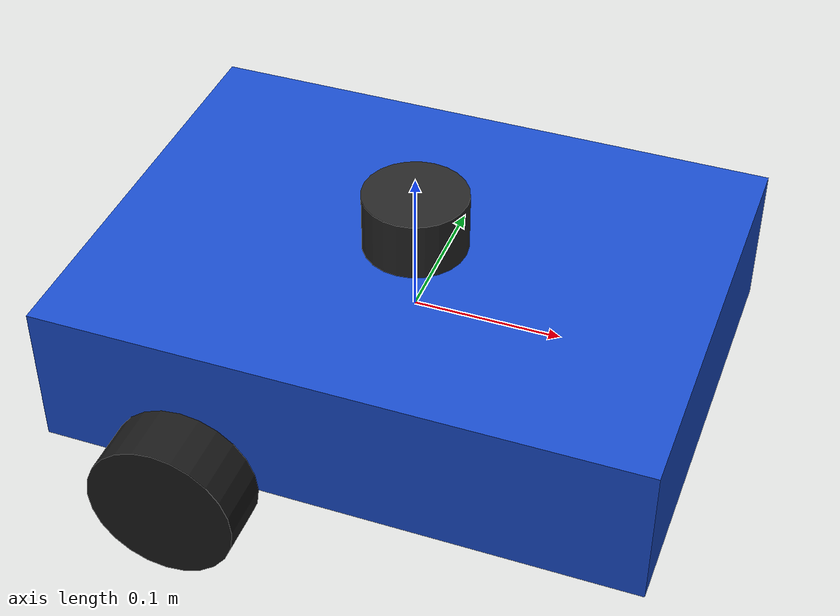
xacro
<?xml version="1.0"?>

<robot xmlns:xacro="http://www.ros.org/wiki/xacro"
       name="robot_diferencial">

<!-- Parametros iniciales: dimencion, ubicacion, variables (pi, densidad, masa) -->

  <!-- Dimensiones del chasis en metros -->
  <xacro:property name="chassis_length" value="0.40"/>
  <xacro:property name="chassis_width" value="0.30"/>
  <xacro:property name="chassis_height" value="0.10"/>

  <!-- Dimensiones de las ruedas en metros -->
  <xacro:property name="wheel_radius" value="0.05"/>
  <xacro:property name="wheel_width" value="0.04"/>
  <xacro:property name="wheel_x_offset" value="-0.10"/>
  <xacro:property name="wheel_y_offset" value="0.17"/>

  <!-- Dimensiones y posicion del caster delantero -->
  <xacro:property name="caster_radius" value="${wheel_radius}"/>
  <xacro:property name="caster_x_offset" value="0.10"/>
  <xacro:property name="caster_z_offset" value="${-caster_radius}"/>

  <!-- Constante pi -->
  <xacro:property name="pi_const" value="3.14159265"/>

  <!-- Masas en kg (realistas, evitan relacion de masas extrema que
       desestabiliza el solver ODE y hace que el robot "se mueva solo") -->
  <xacro:property name="chassis_mass" value="5.0"/>
  <xacro:property name="wheel_mass" value="0.5"/>
  <xacro:property name="caster_mass" value="0.2"/>

<!--       Propiedades del cuerpo principal del robot (base_link)     -->

  <!-- Cuerpo principal del robot -->
  <link name="base_link">

    <visual>
      <origin xyz="0 0 0" rpy="0 0 0"/>

      <geometry>
        <box size="${chassis_length} ${chassis_width} ${chassis_height}"/>
      </geometry>

      <material name="blue">
        <color rgba="0.1 0.3 0.8 1.0"/>
      </material>
    </visual>

    <!-- Geometria de colision del chasis -->
    <collision>
      <origin xyz="0 0 0" rpy="0 0 0"/>

      <geometry>
        <box size="${chassis_length} ${chassis_width} ${chassis_height}"/>
      </geometry>
    </collision>

    <!-- Propiedades de inercia del chasis -->
    <inertial>
      <origin xyz="0 0 0" rpy="0 0 0"/>

      <mass value="${chassis_mass}"/>

      <inertia
        ixx="${chassis_mass * (chassis_width**2 + chassis_height**2) / 12.0}"
        ixy="0.0"
        ixz="0.0"
        iyy="${chassis_mass * (chassis_length**2 + chassis_height**2) / 12.0}"
        iyz="0.0"
        izz="${chassis_mass * (chassis_length**2 + chassis_width**2) / 12.0}"/>
    </inertial>

  </link>

<!--                    Propiedades rueda izquierda                   -->

  <!-- Rueda izquierda -->
  <link name="left_wheel_link">

    <visual>
      <origin xyz="0 0 0" rpy="1.5708 0 0"/>

      <geometry>
        <cylinder radius="${wheel_radius}"
                  length="${wheel_width}"/>
      </geometry>

      <material name="wheel_black">
        <color rgba="0.1 0.1 0.1 1.0"/>
      </material>
    </visual>

    <!-- Geometria de colision de la rueda izquierda -->
    <collision>
      <origin xyz="0 0 0" rpy="1.5708 0 0"/>
      <geometry>
        <cylinder radius="${wheel_radius}"
                  length="${wheel_width}"/>
      </geometry>
    </collision>

    <!-- Propiedades de inercia de la rueda izquierda -->
    <inertial>
      <origin xyz="0 0 0" rpy="0 0 0"/>

      <mass value="${wheel_mass}"/>

      <inertia
        ixx="${wheel_mass * (3*wheel_radius**2 + wheel_width**2) / 12.0}"
        ixy="0.0"
        ixz="0.0"
        iyy="${wheel_mass * wheel_radius**2 / 2.0}"
        iyz="0.0"
        izz="${wheel_mass * (3*wheel_radius**2 + wheel_width**2) / 12.0}"/>
    </inertial>

  </link>

  <!-- Articulacion de la rueda izquierda -->
  <joint name="left_wheel_joint" type="continuous">

    <parent link="base_link"/>
    <child link="left_wheel_link"/>

    <origin xyz="${wheel_x_offset} ${wheel_y_offset} ${-wheel_radius}"
            rpy="0 0 0"/>

    <axis xyz="0 1 0"/>
    <dynamics damping="0.05" friction="0.05"/>

  </joint>

<!--                     Propieades rueda derecha                     -->

  <!-- Rueda derecha -->
  <link name="right_wheel_link">

    <visual>
      <origin xyz="0 0 0" rpy="1.5708 0 0"/>

      <geometry>
        <cylinder radius="${wheel_radius}"
                  length="${wheel_width}"/>
      </geometry>

      <material name="wheel_black_right">
        <color rgba="0.1 0.1 0.1 1.0"/>
      </material>
    </visual>

    <!-- Geometria de colision de la rueda derecha -->
    <collision>
      <origin xyz="0 0 0" rpy="1.5708 0 0"/>

      <geometry>
        <cylinder radius="${wheel_radius}"
                  length="${wheel_width}"/>
      </geometry>
    </collision>

    <!-- Masa e inercia de la rueda derecha -->
    <inertial>
      <origin xyz="0 0 0" rpy="0 0 0"/>

      <mass value="${wheel_mass}"/>

      <inertia
        ixx="${wheel_mass * (3*wheel_radius**2 + wheel_width**2) / 12.0}"
        ixy="0.0"
        ixz="0.0"
        iyy="${wheel_mass * wheel_radius**2 / 2.0}"
        iyz="0.0"
        izz="${wheel_mass * (3*wheel_radius**2 + wheel_width**2) / 12.0}"/>
    </inertial>

  </link>

  <!-- Articulacion de la rueda derecha -->
  <joint name="right_wheel_joint" type="continuous">

    <parent link="base_link"/>
    <child link="right_wheel_link"/>

    <origin xyz="${wheel_x_offset} -${wheel_y_offset} ${-wheel_radius}"
            rpy="0 0 0"/>

    <axis xyz="0 1 0"/>
    <dynamics damping="0.05" friction="0.05"/>

  </joint>

<!--                Propiedades esfera de apoyo (caster)              -->

  <!-- Esfera de apoyo delantera -->
  <link name="caster_link">

    <visual>
      <origin xyz="0 0 0" rpy="0 0 0"/>

      <geometry>
        <sphere radius="${caster_radius}"/>
      </geometry>

      <material name="caster_gray">
        <color rgba="0.7 0.7 0.7 1.0"/>
      </material>

    </visual>

    <!-- Geometria de colision del caster -->
    <collision>
      <origin xyz="0 0 0" rpy="0 0 0"/>

      <geometry>
        <sphere radius="${caster_radius}"/>
      </geometry>
    </collision>

    <!-- Masa e inercia del caster -->
    <inertial>
      <origin xyz="0 0 0" rpy="0 0 0"/>

      <mass value="${caster_mass}"/>

      <inertia
        ixx="${(2.0/5.0) * caster_mass * caster_radius**2}"
        ixy="0.0"
        ixz="0.0"
        iyy="${(2.0/5.0) * caster_mass * caster_radius**2}"
        iyz="0.0"
        izz="${(2.0/5.0) * caster_mass * caster_radius**2}"/>
    </inertial>

  </link>

  <!-- Articulacion fija del caster delantero -->
  <joint name="caster_joint" type="fixed">

    <parent link="base_link"/>
    <child link="caster_link"/>

    <origin xyz="${caster_x_offset} 0 ${caster_z_offset}"
            rpy="0 0 0"/>

  </joint>

<!--               SENSOR LIDAR 2D              -->

  <!-- Cuerpo del sensor -->
  <link name="lidar_link">

    <visual>
      <geometry>
        <cylinder radius="0.035" length="0.04"/>
      </geometry>
      <material name="lidar_black">
        <color rgba="0.15 0.15 0.15 1.0"/>
      </material>
    </visual>

    <collision>
      <geometry>
        <cylinder radius="0.035" length="0.04"/>
      </geometry>
    </collision>

    <inertial>
      <mass value="0.2"/>
      <inertia
        ixx="0.000108167"
        ixy="0.0"
        ixz="0.0"
        iyy="0.000108167"
        iyz="0.0"
        izz="0.0001225"/>
    </inertial>

  </link>

  <!-- Unión fija entre chasis y LiDAR -->
  <joint name="lidar_joint" type="fixed">
    <parent link="base_link"/>
    <child link="lidar_link"/>
    <origin xyz="0 0 0.07" rpy="0 0 0"/>
  </joint>

<!-- SENSOR LASER LIDAR 2D - GAZEBO CLASSIC     -->

  <gazebo reference="lidar_link">
    <material>Gazebo/Black</material>

    <sensor name="lidar_2d" type="ray">
      <always_on>true</always_on>
      <visualize>true</visualize>
      <update_rate>10</update_rate>

      <ray>
        <scan>
          <horizontal>
            <samples>360</samples>
            <resolution>1</resolution>
            <min_angle>${-pi_const}</min_angle>
            <max_angle>${pi_const}</max_angle>
          </horizontal>
        </scan>

        <range>
          <min>0.26</min>
          <max>10.0</max>
          <resolution>0.01</resolution>
        </range>
      </ray>

      <plugin name="gazebo_ros_lidar" filename="libgazebo_ros_ray_sensor.so">
        <ros>
          <remapping>~/out:=scan</remapping>
        </ros>
        <output_type>sensor_msgs/LaserScan</output_type>
        <frame_name>lidar_link</frame_name>
      </plugin>
    </sensor>
  </gazebo>

<!--                          Ajustes Gazebo                          -->

  <!-- Friccion de la rueda izquierda en Gazebo -->
  <gazebo reference="left_wheel_link">
    <maxContacts>1</maxContacts>
    <mu1>1.0</mu1>
    <mu2>1.0</mu2>
    <kp>1000000.0</kp>
    <kd>100.0</kd>
    <minDepth>0.001</minDepth>
    <maxVel>0.1</maxVel>
  </gazebo>

  <!-- Friccion de la rueda derecha en Gazebo -->
  <gazebo reference="right_wheel_link">
    <maxContacts>1</maxContacts>
    <mu1>1.0</mu1>
    <mu2>1.0</mu2>
    <kp>1000000.0</kp>
    <kd>100.0</kd>
    <minDepth>0.001</minDepth>
    <maxVel>0.1</maxVel>
  </gazebo>

  <!-- Friccion del caster delantero -->
  <gazebo reference="caster_link">
    <mu1>0.0</mu1>
    <mu2>0.0</mu2>
    <kp>1000000.0</kp>
    <kd>100.0</kd>
    <minDepth>0.001</minDepth>
    <maxVel>0.1</maxVel>
  </gazebo>

  <!-- Colores de los componentes en Gazebo -->
  <gazebo reference="base_link">
    <material>Gazebo/Blue</material>
  </gazebo>

  <gazebo reference="left_wheel_link">
    <material>Gazebo/Black</material>
  </gazebo>

  <gazebo reference="right_wheel_link">
    <material>Gazebo/Black</material>
  </gazebo>

  <gazebo reference="caster_link">
    <material>Gazebo/Grey</material>
  </gazebo>

<!-- Controlador de movimiento diferencial -->
  <gazebo>
    <plugin name="differential_drive"
            filename="libgazebo_ros_diff_drive.so">

      <!-- Frecuencia de actualizacion -->
      <update_rate>30</update_rate>

      <!-- Articulaciones de las ruedas -->
      <left_joint>left_wheel_joint</left_joint>
      <right_joint>right_wheel_joint</right_joint>

      <!-- Geometria del robot -->
      <wheel_separation>${2 * wheel_y_offset}</wheel_separation>
      <wheel_diameter>${2 * wheel_radius}</wheel_diameter>

      <!-- Limites del controlador -->
      <max_wheel_torque>1.0</max_wheel_torque>
      <max_wheel_acceleration>1.0</max_wheel_acceleration>

      <!-- Topico de comandos (unica entrada de movimiento) -->
      <command_topic>cmd_vel</command_topic>

      <!-- Publicacion de odometria -->
      <publish_odom>true</publish_odom>
      <publish_odom_tf>true</publish_odom_tf>
      <publish_wheel_tf>false</publish_wheel_tf>

      <!-- Marcos de referencia -->
      <odometry_frame>odom</odometry_frame>
      <robot_base_frame>base_link</robot_base_frame>

    </plugin>
  </gazebo>

<!--    PUBLICACION DE ESTADOS DE LAS RUEDAS    -->

  <gazebo>
    <plugin name="joint_state_publisher"
            filename="libgazebo_ros_joint_state_publisher.so">

      <update_rate>30</update_rate>

      <joint_name>left_wheel_joint</joint_name>
      <joint_name>right_wheel_joint</joint_name>

    </plugin>
  </gazebo>

  <link name="base_footprint"/>
  <joint name="base_footprint_joint" type="fixed">
    <parent link="base_link"/>
    <child link="base_footprint"/>
    <origin xyz="${wheel_x_offset} 0 ${-2 * wheel_radius}" rpy="0 0 0"/>
  </joint>

</robot>
